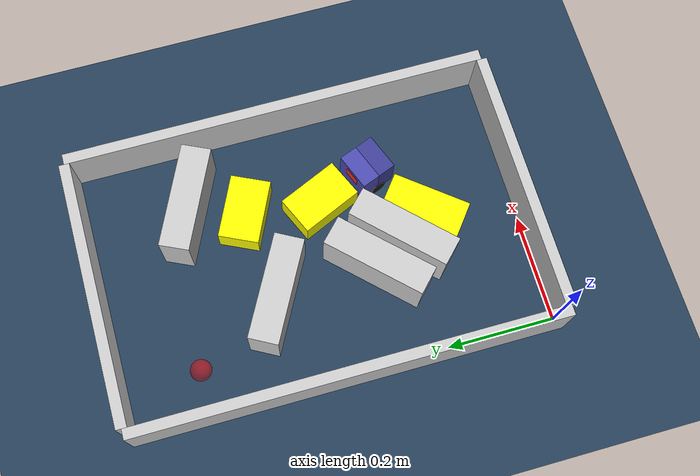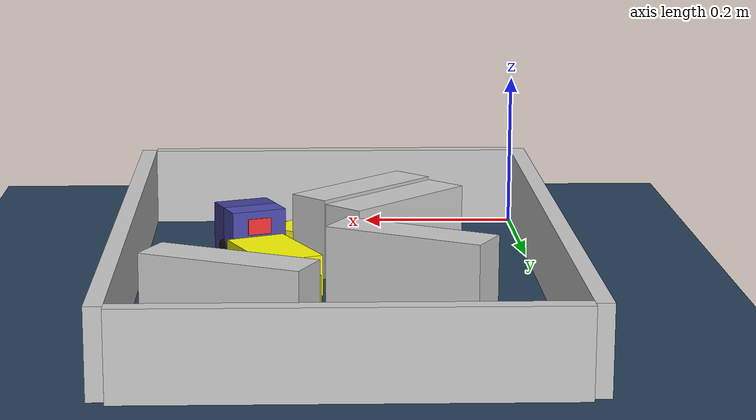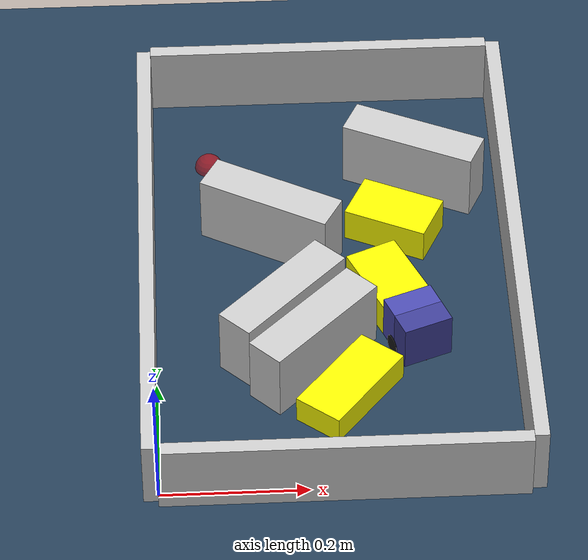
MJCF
<?xml version='1.0' encoding='utf-8'?>
<mujoco model="real_buildable">
  <compiler angle="degree" />
  <option timestep="0.002" integrator="implicitfast" iterations="100" cone="elliptic" />
  <default>
    <geom density="1" />
  </default>
  <asset>
    <texture builtin="gradient" height="3072" rgb1="0.3 0.5 0.7" rgb2="0 0 0" type="skybox" width="512" />
    <texture builtin="checker" height="300" mark="edge" markrgb="0.8 0.8 0.8" name="groundplane" rgb1="0.2 0.3 0.4" rgb2="0.1 0.2 0.3" type="2d" width="300" />
    <material name="groundplane" reflectance="0.2" texrepeat="5 5" texture="groundplane" texuniform="true" />
  </asset>
  <worldbody>
    <light dir="0 0 -1" directional="true" pos="0 0 1.5" />
    <geom name="floor" type="plane" condim="4" friction="0.5 0.005 0.001" material="groundplane" size="0 0 0.05" />
    <body name="walls">
      <geom name="wall_boundary_left" type="box" condim="4" friction="1.0 0.005 0.0001" rgba="0.8 0.8 0.8 1" pos="-0.010000 0.387500 0.050000" euler="0 0 0.000000" size="0.010000 0.397500 0.050000" />
      <geom name="wall_boundary_right" type="box" condim="4" friction="1.0 0.005 0.0001" rgba="0.8 0.8 0.8 1" pos="0.500000 0.387500 0.050000" euler="0 0 0.000000" size="0.010000 0.397500 0.050000" />
      <geom name="wall_boundary_bottom" type="box" condim="4" friction="1.0 0.005 0.0001" rgba="0.8 0.8 0.8 1" pos="0.245000 -0.010000 0.050000" euler="0 0 0.000000" size="0.245000 0.010000 0.050000" />
      <geom name="wall_boundary_top" type="box" condim="4" friction="1.0 0.005 0.0001" rgba="0.8 0.8 0.8 1" pos="0.245000 0.785000 0.050000" euler="0 0 0.000000" size="0.245000 0.010000 0.050000" />
      <geom name="wall_inner_1" type="box" condim="4" friction="1.0 0.005 0.0001" rgba="0.8 0.8 0.8 1" pos="0.213738 0.226942 0.050000" euler="0 0 225.276897" size="0.097500 0.027500 0.050000" />
      <geom name="wall_inner_2" type="box" condim="4" friction="1.0 0.005 0.0001" rgba="0.8 0.8 0.8 1" pos="0.174133 0.283880 0.050000" euler="0 0 225.842347" size="0.097500 0.027500 0.050000" />
      <geom name="wall_inner_3" type="box" condim="4" friction="1.0 0.005 0.0001" rgba="0.8 0.8 0.8 1" pos="0.165000 0.474000 0.050000" euler="0 0 151.300000" size="0.097500 0.027500 0.050000" />
      <geom name="wall_inner_4" type="box" condim="4" friction="1.0 0.005 0.0001" rgba="0.8 0.8 0.8 1" pos="0.372000 0.588000 0.050000" euler="0 0 154.700000" size="0.097500 0.027500 0.050000" />
    </body>
    <body name="car" pos="0.3561581051320295 0.25135945891682632 0.01" quat="0.56432695464569882 0 0 0.8255513843851946">
      <freejoint name="car_freejoint" />
      <inertial pos="0 0 0.0375" mass="0.35" diaginertia="0.000266 0.000266 0.000286" />
      <geom name="front_chassis_collision" type="box" pos="0.0175 0 0.0375" size="0.0175 0.035 0.0325" rgba="0.3 0.3 0.7 1" />
      <geom name="rear_chassis_collision" type="box" pos="-0.0175 0 0.0375" size="0.0175 0.035 0.0325" rgba="0.25 0.25 0.6 1" />
      <geom name="front_marker" type="box" pos="0.034 0 0.0505" size="0.002 0.015 0.01" rgba="1 0.2 0.2 1" contype="0" conaffinity="0" />
      <body name="rear_support_body" pos="-0.03 0 0.0025">
        <joint name="rear_caster_joint" type="ball" damping="0.0001" />
        <inertial pos="0 0 0" mass="0.025" diaginertia="0.000001 0.000001 0.000001" />
        <geom name="rear_support" type="sphere" pos="0 0 0" size="0.0025" friction="0 0 0" rgba="0.7 0.1 0.1 1" />
      </body>
      <body name="front_support_body" pos="0.03 0 0.0025">
        <joint name="front_caster_joint" type="ball" damping="0.0001" />
        <inertial pos="0 0 0" mass="0.025" diaginertia="0.000001 0.000001 0.000001" />
        <geom name="front_support" type="sphere" pos="0 0 0" size="0.0025" friction="0 0 0" rgba="0.1 0.7 0.1 1" />
      </body>
      <body name="left_wheel" pos="0 0.0375 0.015">
        <inertial pos="0 0 0" mass="0.05" diaginertia="0.000003 0.000006 0.000003" />
        <joint name="left_wheel_joint" type="hinge" axis="0 1 0" damping="0.01" armature="0.0001" />
        <geom name="left_wheel_collision" type="cylinder" size="0.015 0.0005" euler="90 0 0" rgba="0.1 0.1 0.1 1" />
      </body>
      <body name="right_wheel" pos="0 -0.0375 0.015">
        <inertial pos="0 0 0" mass="0.05" diaginertia="0.000003 0.000006 0.000003" />
        <joint name="right_wheel_joint" type="hinge" axis="0 1 0" damping="0.01" armature="0.0001" />
        <geom name="right_wheel_collision" type="cylinder" size="0.015 0.0005" euler="90 0 0" rgba="0.1 0.1 0.1 1" />
      </body>
    </body>
    <body name="obstacle_0_movable">
      <geom name="obstacle_0_movable" condim="4" pos="0.324502394605033 0.35044672190292786 0.025000000000000001" friction="1 0.005 0.0001" rgba="1 1 0 1" size="0.037500 0.060000 0.025000" type="box" mass="0.1" quat="0.97863701341137777 0 0 0.2055957100263982" />
      <joint type="free" />
    </body>
    <body name="obstacle_1_movable">
      <geom name="obstacle_1_movable" condim="4" pos="0.33900000000000002 0.48999999999999955 0.025000000000000001" friction="1 0.005 0.0001" rgba="1 1 0 1" size="0.037500 0.060000 0.025000" type="box" mass="0.1" quat="0.84619316612756401 0 0 0.53287627607072996" />
      <joint type="free" />
    </body>
    <body name="obstacle_2_movable">
      <geom name="obstacle_2_movable" condim="4" pos="0.2602020000000001 0.16561200000000006 0.02" friction="1 0.005 0.0001" rgba="1 1 0 1" size="0.035000 0.075000 0.020000" type="box" mass="0.1" quat="0.33048661180995498 0 0 0.94381067985818856" />
      <joint type="free" />
    </body>
    <site name="goal" type="sphere" pos="0.080000 0.640000 0.0" size="0.02" rgba="1 0 0 0.5" />
  </worldbody>
  <actuator>
    <velocity name="left_wheel_drive" joint="left_wheel_joint" ctrlrange="-25 25" kv="0.75" forcerange="-0.5 0.5" />
    <velocity name="right_wheel_drive" joint="right_wheel_joint" ctrlrange="-25 25" kv="0.75" forcerange="-0.5 0.5" />
  </actuator>
</mujoco>
